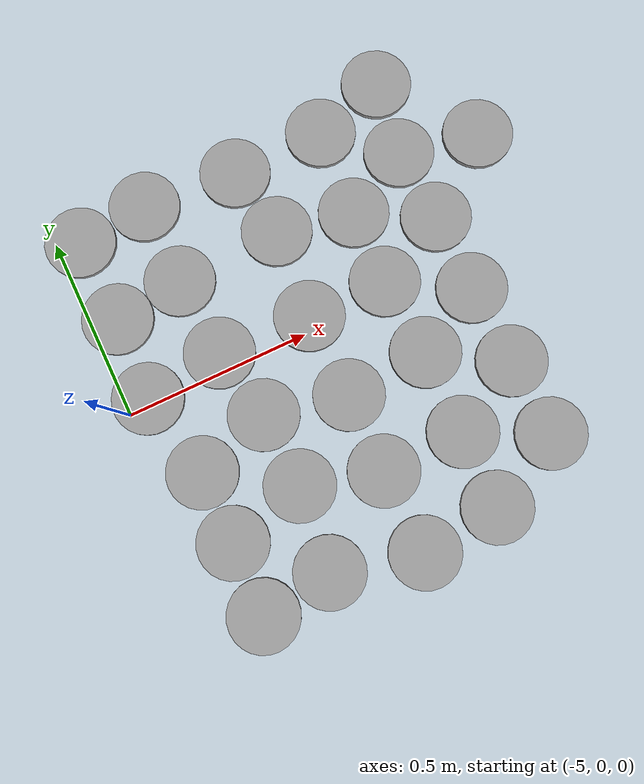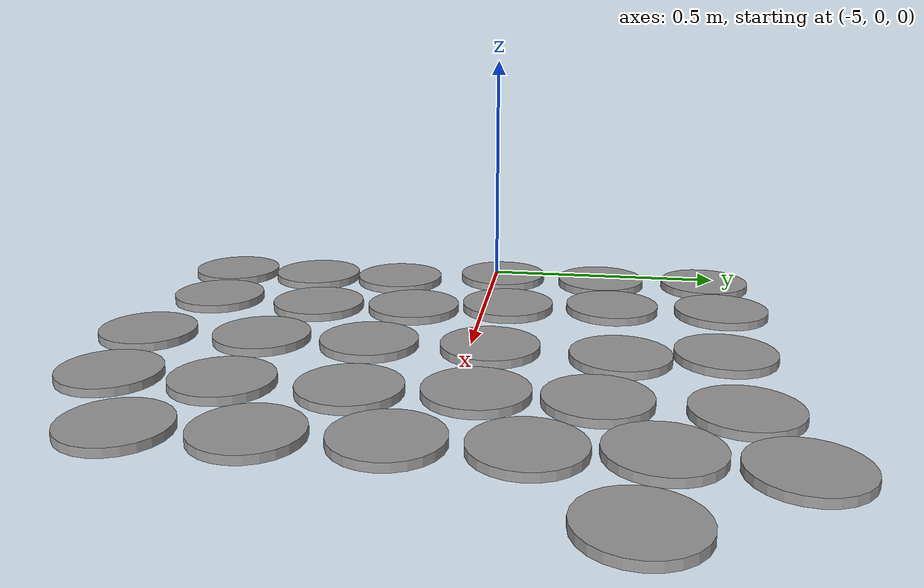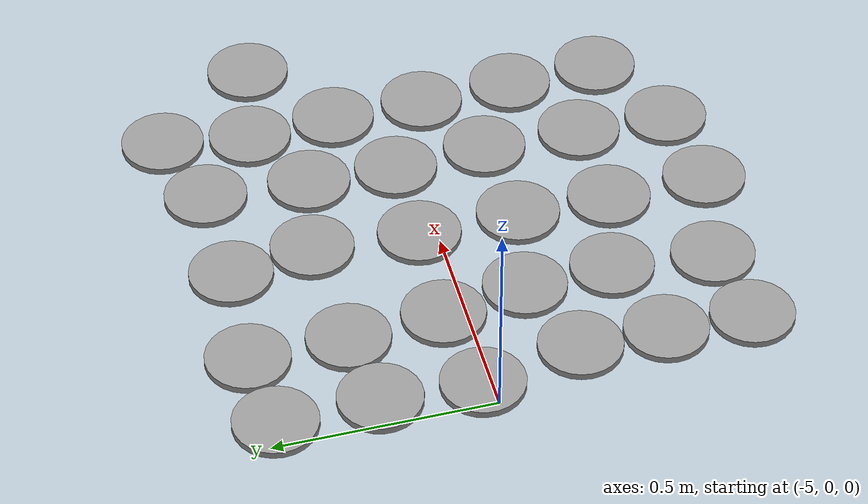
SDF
<sdf version="1.6">
 <world name="default">
  <model name="unit_cylinder_clone">
   <pose>-4.92824 0.244346 0.008114 0 0 -0.669076</pose>
   <link name="link">
    <inertial>
     <mass>1</mass>
     <inertia><ixx>0.145833</ixx><ixy>0</ixy><ixz>0</ixz><iyy>0.145833</iyy><iyz>0</iyz><izz>0.125</izz></inertia>
    </inertial>
    <collision name="collision">
     <geometry><cylinder><radius>0.0950718</radius><length>0.0162339</length></cylinder></geometry>
    </collision>
    <visual name="visual">
     <geometry><cylinder><radius>0.0950718</radius><length>0.0162339</length></cylinder></geometry>
     <material>
      <script><name>Gazebo/Grey</name><uri>file://media/materials/scripts/gazebo.material</uri></script>
     </material>
    </visual>
   </link>
  </model>
  <model name="unit_cylinder_clone_clone">
   <pose>-4.94005 0.019823 0.008108 0 -0 0.098454</pose>
   <link name="link">
    <inertial>
     <mass>1</mass>
     <inertia><ixx>0.145833</ixx><ixy>0</ixy><ixz>0</ixz><iyy>0.145833</iyy><iyz>0</iyz><izz>0.125</izz></inertia>
    </inertial>
    <collision name="collision">
     <geometry><cylinder><radius>0.0950718</radius><length>0.0162339</length></cylinder></geometry>
    </collision>
    <visual name="visual">
     <geometry><cylinder><radius>0.0950718</radius><length>0.0162339</length></cylinder></geometry>
     <material>
      <script><name>Gazebo/Grey</name><uri>file://media/materials/scripts/gazebo.material</uri></script>
     </material>
    </visual>
   </link>
  </model>
  <model name="unit_cylinder_clone_clone_1">
   <pose>-4.88991 -0.213171 0.008116 0 -0 0.00121</pose>
   <link name="link">
    <inertial>
     <mass>1</mass>
     <inertia><ixx>0.145833</ixx><ixy>0</ixy><ixz>0</ixz><iyy>0.145833</iyy><iyz>0</iyz><izz>0.125</izz></inertia>
    </inertial>
    <collision name="collision">
     <geometry><cylinder><radius>0.0950718</radius><length>0.0162339</length></cylinder></geometry>
    </collision>
    <visual name="visual">
     <geometry><cylinder><radius>0.0950718</radius><length>0.0162339</length></cylinder></geometry>
     <material>
      <script><name>Gazebo/Grey</name><uri>file://media/materials/scripts/gazebo.material</uri></script>
     </material>
    </visual>
   </link>
  </model>
  <model name="unit_cylinder_clone_clone_2">
   <pose>-4.89151 -0.407672 0.008113 5e-06 -0 0</pose>
   <link name="link">
    <inertial>
     <mass>1</mass>
     <inertia><ixx>0.145833</ixx><ixy>0</ixy><ixz>0</ixz><iyy>0.145833</iyy><iyz>0</iyz><izz>0.125</izz></inertia>
    </inertial>
    <collision name="collision">
     <geometry><cylinder><radius>0.0950718</radius><length>0.0162339</length></cylinder></geometry>
    </collision>
    <visual name="visual">
     <geometry><cylinder><radius>0.0950718</radius><length>0.0162339</length></cylinder></geometry>
     <material>
      <script><name>Gazebo/Grey</name><uri>file://media/materials/scripts/gazebo.material</uri></script>
     </material>
    </visual>
   </link>
  </model>
  <model name="unit_cylinder_clone_clone_3">
   <pose>-4.89624 -0.604172 0.008113 5e-06 -0 0</pose>
   <link name="link">
    <inertial>
     <mass>1</mass>
     <inertia><ixx>0.145833</ixx><ixy>0</ixy><ixz>0</ixz><iyy>0.145833</iyy><iyz>0</iyz><izz>0.125</izz></inertia>
    </inertial>
    <collision name="collision">
     <geometry><cylinder><radius>0.0950718</radius><length>0.0162339</length></cylinder></geometry>
    </collision>
    <visual name="visual">
     <geometry><cylinder><radius>0.0950718</radius><length>0.0162339</length></cylinder></geometry>
     <material>
      <script><name>Gazebo/Grey</name><uri>file://media/materials/scripts/gazebo.material</uri></script>
     </material>
    </visual>
   </link>
  </model>
  <model name="unit_cylinder_clone_clone_4">
   <pose>-4.74309 0.493456 0.008111 -0 6e-06 -1.60408</pose>
   <link name="link">
    <inertial>
     <mass>1</mass>
     <inertia><ixx>0.145833</ixx><ixy>0</ixy><ixz>0</ixz><iyy>0.145833</iyy><iyz>0</iyz><izz>0.125</izz></inertia>
    </inertial>
    <collision name="collision">
     <geometry><cylinder><radius>0.0950718</radius><length>0.0162339</length></cylinder></geometry>
    </collision>
    <visual name="visual">
     <geometry><cylinder><radius>0.0950718</radius><length>0.0162339</length></cylinder></geometry>
     <material>
      <script><name>Gazebo/Grey</name><uri>file://media/materials/scripts/gazebo.material</uri></script>
     </material>
    </visual>
   </link>
  </model>
  <model name="unit_cylinder_clone_clone_5">
   <pose>-4.93657 0.475133 0.008114 0 0 -0.035931</pose>
   <link name="link">
    <inertial>
     <mass>1</mass>
     <inertia><ixx>0.145833</ixx><ixy>0</ixy><ixz>0</ixz><iyy>0.145833</iyy><iyz>0</iyz><izz>0.125</izz></inertia>
    </inertial>
    <collision name="collision">
     <geometry><cylinder><radius>0.0950718</radius><length>0.0162339</length></cylinder></geometry>
    </collision>
    <visual name="visual">
     <geometry><cylinder><radius>0.0950718</radius><length>0.0162339</length></cylinder></geometry>
     <material>
      <script><name>Gazebo/Grey</name><uri>file://media/materials/scripts/gazebo.material</uri></script>
     </material>
    </visual>
   </link>
  </model>
  <model name="unit_cylinder_clone_clone_7">
   <pose>-4.72333 0.050462 0.008117 0 -0 0.000482</pose>
   <link name="link">
    <inertial>
     <mass>1</mass>
     <inertia><ixx>0.145833</ixx><ixy>0</ixy><ixz>0</ixz><iyy>0.145833</iyy><iyz>0</iyz><izz>0.125</izz></inertia>
    </inertial>
    <collision name="collision">
     <geometry><cylinder><radius>0.0950718</radius><length>0.0162339</length></cylinder></geometry>
    </collision>
    <visual name="visual">
     <geometry><cylinder><radius>0.0950718</radius><length>0.0162339</length></cylinder></geometry>
     <material>
      <script><name>Gazebo/Grey</name><uri>file://media/materials/scripts/gazebo.material</uri></script>
     </material>
    </visual>
   </link>
  </model>
  <model name="unit_cylinder_clone_clone_8">
   <pose>-4.68614 -0.145367 0.008108 0 -0 0.000518</pose>
   <link name="link">
    <inertial>
     <mass>1</mass>
     <inertia><ixx>0.145833</ixx><ixy>0</ixy><ixz>0</ixz><iyy>0.145833</iyy><iyz>0</iyz><izz>0.125</izz></inertia>
    </inertial>
    <collision name="collision">
     <geometry><cylinder><radius>0.0950718</radius><length>0.0162339</length></cylinder></geometry>
    </collision>
    <visual name="visual">
     <geometry><cylinder><radius>0.0950718</radius><length>0.0162339</length></cylinder></geometry>
     <material>
      <script><name>Gazebo/Grey</name><uri>file://media/materials/scripts/gazebo.material</uri></script>
     </material>
    </visual>
   </link>
  </model>
  <model name="unit_cylinder_clone_clone_9">
   <pose>-4.67778 -0.349152 0.008111 0 -0 0</pose>
   <link name="link">
    <inertial>
     <mass>1</mass>
     <inertia><ixx>0.145833</ixx><ixy>0</ixy><ixz>0</ixz><iyy>0.145833</iyy><iyz>0</iyz><izz>0.125</izz></inertia>
    </inertial>
    <collision name="collision">
     <geometry><cylinder><radius>0.0950718</radius><length>0.0162339</length></cylinder></geometry>
    </collision>
    <visual name="visual">
     <geometry><cylinder><radius>0.0950718</radius><length>0.0162339</length></cylinder></geometry>
     <material>
      <script><name>Gazebo/Grey</name><uri>file://media/materials/scripts/gazebo.material</uri></script>
     </material>
    </visual>
   </link>
  </model>
  <model name="unit_cylinder_clone_clone_10">
   <pose>-4.70032 -0.577507 0.008108 0 -0 0</pose>
   <link name="link">
    <inertial>
     <mass>1</mass>
     <inertia><ixx>0.145833</ixx><ixy>0</ixy><ixz>0</ixz><iyy>0.145833</iyy><iyz>0</iyz><izz>0.125</izz></inertia>
    </inertial>
    <collision name="collision">
     <geometry><cylinder><radius>0.0950718</radius><length>0.0162339</length></cylinder></geometry>
    </collision>
    <visual name="visual">
     <geometry><cylinder><radius>0.0950718</radius><length>0.0162339</length></cylinder></geometry>
     <material>
      <script><name>Gazebo/Grey</name><uri>file://media/materials/scripts/gazebo.material</uri></script>
     </material>
    </visual>
   </link>
  </model>
  <model name="unit_cylinder_clone_clone_11">
   <pose>-4.73967 0.268855 0.008112 0 0 -0.462715</pose>
   <link name="link">
    <inertial>
     <mass>1</mass>
     <inertia><ixx>0.145833</ixx><ixy>0</ixy><ixz>0</ixz><iyy>0.145833</iyy><iyz>0</iyz><izz>0.125</izz></inertia>
    </inertial>
    <collision name="collision">
     <geometry><cylinder><radius>0.0950718</radius><length>0.0162339</length></cylinder></geometry>
    </collision>
    <visual name="visual">
     <geometry><cylinder><radius>0.0950718</radius><length>0.0162339</length></cylinder></geometry>
     <material>
      <script><name>Gazebo/Grey</name><uri>file://media/materials/scripts/gazebo.material</uri></script>
     </material>
    </visual>
   </link>
  </model>
  <model name="unit_cylinder_clone_clone_12">
   <pose>-4.48597 0.47576 0.008484 -0.001635 0.003501 -0.231539</pose>
   <link name="link">
    <inertial>
     <mass>1</mass>
     <inertia><ixx>0.145833</ixx><ixy>0</ixy><ixz>0</ixz><iyy>0.145833</iyy><iyz>0</iyz><izz>0.125</izz></inertia>
    </inertial>
    <collision name="collision">
     <geometry><cylinder><radius>0.0950718</radius><length>0.0162339</length></cylinder></geometry>
    </collision>
    <visual name="visual">
     <geometry><cylinder><radius>0.0950718</radius><length>0.0162339</length></cylinder></geometry>
     <material>
      <script><name>Gazebo/Grey</name><uri>file://media/materials/scripts/gazebo.material</uri></script>
     </material>
    </visual>
   </link>
  </model>
  <model name="unit_cylinder_clone_clone_13">
   <pose>-4.45178 0.283309 0.008113 0 0 -0.013302</pose>
   <link name="link">
    <inertial>
     <mass>1</mass>
     <inertia><ixx>0.145833</ixx><ixy>0</ixy><ixz>0</ixz><iyy>0.145833</iyy><iyz>0</iyz><izz>0.125</izz></inertia>
    </inertial>
    <collision name="collision">
     <geometry><cylinder><radius>0.0950718</radius><length>0.0162339</length></cylinder></geometry>
    </collision>
    <visual name="visual">
     <geometry><cylinder><radius>0.0950718</radius><length>0.0162339</length></cylinder></geometry>
     <material>
      <script><name>Gazebo/Grey</name><uri>file://media/materials/scripts/gazebo.material</uri></script>
     </material>
    </visual>
   </link>
  </model>
  <model name="unit_cylinder_clone_clone_14">
   <pose>-4.46934 0.039984 0.008108 0 -0 0</pose>
   <link name="link">
    <inertial>
     <mass>1</mass>
     <inertia><ixx>0.145833</ixx><ixy>0</ixy><ixz>0</ixz><iyy>0.145833</iyy><iyz>0</iyz><izz>0.125</izz></inertia>
    </inertial>
    <collision name="collision">
     <geometry><cylinder><radius>0.0950718</radius><length>0.0162339</length></cylinder></geometry>
    </collision>
    <visual name="visual">
     <geometry><cylinder><radius>0.0950718</radius><length>0.0162339</length></cylinder></geometry>
     <material>
      <script><name>Gazebo/Grey</name><uri>file://media/materials/scripts/gazebo.material</uri></script>
     </material>
    </visual>
   </link>
  </model>
  <model name="unit_cylinder_clone_clone_15">
   <pose>-4.46416 -0.191836 0.008113 0 -0 0</pose>
   <link name="link">
    <inertial>
     <mass>1</mass>
     <inertia><ixx>0.145833</ixx><ixy>0</ixy><ixz>0</ixz><iyy>0.145833</iyy><iyz>0</iyz><izz>0.125</izz></inertia>
    </inertial>
    <collision name="collision">
     <geometry><cylinder><radius>0.0950718</radius><length>0.0162339</length></cylinder></geometry>
    </collision>
    <visual name="visual">
     <geometry><cylinder><radius>0.0950718</radius><length>0.0162339</length></cylinder></geometry>
     <material>
      <script><name>Gazebo/Grey</name><uri>file://media/materials/scripts/gazebo.material</uri></script>
     </material>
    </visual>
   </link>
  </model>
  <model name="unit_cylinder_clone_clone_16">
   <pose>-4.46665 -0.405888 0.008117 0 -0 0</pose>
   <link name="link">
    <inertial>
     <mass>1</mass>
     <inertia><ixx>0.145833</ixx><ixy>0</ixy><ixz>0</ixz><iyy>0.145833</iyy><iyz>0</iyz><izz>0.125</izz></inertia>
    </inertial>
    <collision name="collision">
     <geometry><cylinder><radius>0.0950718</radius><length>0.0162339</length></cylinder></geometry>
    </collision>
    <visual name="visual">
     <geometry><cylinder><radius>0.0950718</radius><length>0.0162339</length></cylinder></geometry>
     <material>
      <script><name>Gazebo/Grey</name><uri>file://media/materials/scripts/gazebo.material</uri></script>
     </material>
    </visual>
   </link>
  </model>
  <model name="unit_cylinder_clone_clone_17">
   <pose>-4.46064 -0.635367 0.008111 0 -0 0</pose>
   <link name="link">
    <inertial>
     <mass>1</mass>
     <inertia><ixx>0.145833</ixx><ixy>0</ixy><ixz>0</ixz><iyy>0.145833</iyy><iyz>0</iyz><izz>0.125</izz></inertia>
    </inertial>
    <collision name="collision">
     <geometry><cylinder><radius>0.0950718</radius><length>0.0162339</length></cylinder></geometry>
    </collision>
    <visual name="visual">
     <geometry><cylinder><radius>0.0950718</radius><length>0.0162339</length></cylinder></geometry>
     <material>
      <script><name>Gazebo/Grey</name><uri>file://media/materials/scripts/gazebo.material</uri></script>
     </material>
    </visual>
   </link>
  </model>
  <model name="unit_cylinder_clone_clone_18">
   <pose>-4.24417 -0.611687 0.008108 0 -0 0</pose>
   <link name="link">
    <inertial>
     <mass>1</mass>
     <inertia><ixx>0.145833</ixx><ixy>0</ixy><ixz>0</ixz><iyy>0.145833</iyy><iyz>0</iyz><izz>0.125</izz></inertia>
    </inertial>
    <collision name="collision">
     <geometry><cylinder><radius>0.0950718</radius><length>0.0162339</length></cylinder></geometry>
    </collision>
    <visual name="visual">
     <geometry><cylinder><radius>0.0950718</radius><length>0.0162339</length></cylinder></geometry>
     <material>
      <script><name>Gazebo/Grey</name><uri>file://media/materials/scripts/gazebo.material</uri></script>
     </material>
    </visual>
   </link>
  </model>
  <model name="unit_cylinder_clone_clone_19">
   <pose>-4.23882 -0.40217 0.008108 0 -0 0</pose>
   <link name="link">
    <inertial>
     <mass>1</mass>
     <inertia><ixx>0.145833</ixx><ixy>0</ixy><ixz>0</ixz><iyy>0.145833</iyy><iyz>0</iyz><izz>0.125</izz></inertia>
    </inertial>
    <collision name="collision">
     <geometry><cylinder><radius>0.0950718</radius><length>0.0162339</length></cylinder></geometry>
    </collision>
    <visual name="visual">
     <geometry><cylinder><radius>0.0950718</radius><length>0.0162339</length></cylinder></geometry>
     <material>
      <script><name>Gazebo/Grey</name><uri>file://media/materials/scripts/gazebo.material</uri></script>
     </material>
    </visual>
   </link>
  </model>
  <model name="unit_cylinder_clone_clone_20">
   <pose>-4.23553 -0.175422 0.008113 5e-06 -0 0</pose>
   <link name="link">
    <inertial>
     <mass>1</mass>
     <inertia><ixx>0.145833</ixx><ixy>0</ixy><ixz>0</ixz><iyy>0.145833</iyy><iyz>0</iyz><izz>0.125</izz></inertia>
    </inertial>
    <collision name="collision">
     <geometry><cylinder><radius>0.0950718</radius><length>0.0162339</length></cylinder></geometry>
    </collision>
    <visual name="visual">
     <geometry><cylinder><radius>0.0950718</radius><length>0.0162339</length></cylinder></geometry>
     <material>
      <script><name>Gazebo/Grey</name><uri>file://media/materials/scripts/gazebo.material</uri></script>
     </material>
    </visual>
   </link>
  </model>
  <model name="unit_cylinder_clone_clone_21">
   <pose>-4.25035 0.039573 0.008108 0 -0 0</pose>
   <link name="link">
    <inertial>
     <mass>1</mass>
     <inertia><ixx>0.145833</ixx><ixy>0</ixy><ixz>0</ixz><iyy>0.145833</iyy><iyz>0</iyz><izz>0.125</izz></inertia>
    </inertial>
    <collision name="collision">
     <geometry><cylinder><radius>0.0950718</radius><length>0.0162339</length></cylinder></geometry>
    </collision>
    <visual name="visual">
     <geometry><cylinder><radius>0.0950718</radius><length>0.0162339</length></cylinder></geometry>
     <material>
      <script><name>Gazebo/Grey</name><uri>file://media/materials/scripts/gazebo.material</uri></script>
     </material>
    </visual>
   </link>
  </model>
  <model name="unit_cylinder_clone_clone_22">
   <pose>-4.24467 0.2429 0.008108 0 -0 0.001298</pose>
   <link name="link">
    <inertial>
     <mass>1</mass>
     <inertia><ixx>0.145833</ixx><ixy>0</ixy><ixz>0</ixz><iyy>0.145833</iyy><iyz>0</iyz><izz>0.125</izz></inertia>
    </inertial>
    <collision name="collision">
     <geometry><cylinder><radius>0.0950718</radius><length>0.0162339</length></cylinder></geometry>
    </collision>
    <visual name="visual">
     <geometry><cylinder><radius>0.0950718</radius><length>0.0162339</length></cylinder></geometry>
     <material>
      <script><name>Gazebo/Grey</name><uri>file://media/materials/scripts/gazebo.material</uri></script>
     </material>
    </visual>
   </link>
  </model>
  <model name="unit_cylinder_clone_clone_23">
   <pose>-4.2309 0.480876 0.008107 0 0 -0.001963</pose>
   <link name="link">
    <inertial>
     <mass>1</mass>
     <inertia><ixx>0.145833</ixx><ixy>0</ixy><ixz>0</ixz><iyy>0.145833</iyy><iyz>0</iyz><izz>0.125</izz></inertia>
    </inertial>
    <collision name="collision">
     <geometry><cylinder><radius>0.0950718</radius><length>0.0162339</length></cylinder></geometry>
    </collision>
    <visual name="visual">
     <geometry><cylinder><radius>0.0950718</radius><length>0.0162339</length></cylinder></geometry>
     <material>
      <script><name>Gazebo/Grey</name><uri>file://media/materials/scripts/gazebo.material</uri></script>
     </material>
    </visual>
   </link>
  </model>
  <model name="unit_cylinder_clone_clone_24">
   <pose>-4.03583 0.541954 0.008108 0 -0 0</pose>
   <link name="link">
    <inertial>
     <mass>1</mass>
     <inertia><ixx>0.145833</ixx><ixy>0</ixy><ixz>0</ixz><iyy>0.145833</iyy><iyz>0</iyz><izz>0.125</izz></inertia>
    </inertial>
    <collision name="collision">
     <geometry><cylinder><radius>0.0950718</radius><length>0.0162339</length></cylinder></geometry>
    </collision>
    <visual name="visual">
     <geometry><cylinder><radius>0.0950718</radius><length>0.0162339</length></cylinder></geometry>
     <material>
      <script><name>Gazebo/Grey</name><uri>file://media/materials/scripts/gazebo.material</uri></script>
     </material>
    </visual>
   </link>
  </model>
  <model name="unit_cylinder_clone_clone_25">
   <pose>-4.06381 0.341531 0.008113 5e-06 -0 0</pose>
   <link name="link">
    <inertial>
     <mass>1</mass>
     <inertia><ixx>0.145833</ixx><ixy>0</ixy><ixz>0</ixz><iyy>0.145833</iyy><iyz>0</iyz><izz>0.125</izz></inertia>
    </inertial>
    <collision name="collision">
     <geometry><cylinder><radius>0.0950718</radius><length>0.0162339</length></cylinder></geometry>
    </collision>
    <visual name="visual">
     <geometry><cylinder><radius>0.0950718</radius><length>0.0162339</length></cylinder></geometry>
     <material>
      <script><name>Gazebo/Grey</name><uri>file://media/materials/scripts/gazebo.material</uri></script>
     </material>
    </visual>
   </link>
  </model>
  <model name="unit_cylinder_clone_clone_26">
   <pose>-4.05114 0.140238 0.008108 0 -0 0</pose>
   <link name="link">
    <inertial>
     <mass>1</mass>
     <inertia><ixx>0.145833</ixx><ixy>0</ixy><ixz>0</ixz><iyy>0.145833</iyy><iyz>0</iyz><izz>0.125</izz></inertia>
    </inertial>
    <collision name="collision">
     <geometry><cylinder><radius>0.0950718</radius><length>0.0162339</length></cylinder></geometry>
    </collision>
    <visual name="visual">
     <geometry><cylinder><radius>0.0950718</radius><length>0.0162339</length></cylinder></geometry>
     <material>
      <script><name>Gazebo/Grey</name><uri>file://media/materials/scripts/gazebo.material</uri></script>
     </material>
    </visual>
   </link>
  </model>
  <model name="unit_cylinder_clone_clone_27">
   <pose>-4.05025 -0.072851 0.008108 0 -0 0</pose>
   <link name="link">
    <inertial>
     <mass>1</mass>
     <inertia><ixx>0.145833</ixx><ixy>0</ixy><ixz>0</ixz><iyy>0.145833</iyy><iyz>0</iyz><izz>0.125</izz></inertia>
    </inertial>
    <collision name="collision">
     <geometry><cylinder><radius>0.0950718</radius><length>0.0162339</length></cylinder></geometry>
    </collision>
    <visual name="visual">
     <geometry><cylinder><radius>0.0950718</radius><length>0.0162339</length></cylinder></geometry>
     <material>
      <script><name>Gazebo/Grey</name><uri>file://media/materials/scripts/gazebo.material</uri></script>
     </material>
    </visual>
   </link>
  </model>
  <model name="unit_cylinder_clone_clone_28">
   <pose>-4.04202 -0.290432 0.008113 5e-06 -0 0</pose>
   <link name="link">
    <inertial>
     <mass>1</mass>
     <inertia><ixx>0.145833</ixx><ixy>0</ixy><ixz>0</ixz><iyy>0.145833</iyy><iyz>0</iyz><izz>0.125</izz></inertia>
    </inertial>
    <collision name="collision">
     <geometry><cylinder><radius>0.0950718</radius><length>0.0162339</length></cylinder></geometry>
    </collision>
    <visual name="visual">
     <geometry><cylinder><radius>0.0950718</radius><length>0.0162339</length></cylinder></geometry>
     <material>
      <script><name>Gazebo/Grey</name><uri>file://media/materials/scripts/gazebo.material</uri></script>
     </material>
    </visual>
   </link>
  </model>
  <model name="unit_cylinder_clone_clone_29">
   <pose>-4.03468 -0.501989 0.008108 0 -0 0</pose>
   <link name="link">
    <inertial>
     <mass>1</mass>
     <inertia><ixx>0.145833</ixx><ixy>0</ixy><ixz>0</ixz><iyy>0.145833</iyy><iyz>0</iyz><izz>0.125</izz></inertia>
    </inertial>
    <collision name="collision">
     <geometry><cylinder><radius>0.0950718</radius><length>0.0162339</length></cylinder></geometry>
    </collision>
    <visual name="visual">
     <geometry><cylinder><radius>0.0950718</radius><length>0.0162339</length></cylinder></geometry>
     <material>
      <script><name>Gazebo/Grey</name><uri>file://media/materials/scripts/gazebo.material</uri></script>
     </material>
    </visual>
   </link>
  </model>
  <model name="unit_cylinder_clone_clone_34">
   <pose>-3.84755 0.300225 0.008108 0 -0 0</pose>
   <link name="link">
    <inertial>
     <mass>1</mass>
     <inertia><ixx>0.145833</ixx><ixy>0</ixy><ixz>0</ixz><iyy>0.145833</iyy><iyz>0</iyz><izz>0.125</izz></inertia>
    </inertial>
    <collision name="collision">
     <geometry><cylinder><radius>0.0950718</radius><length>0.0162339</length></cylinder></geometry>
    </collision>
    <visual name="visual">
     <geometry><cylinder><radius>0.0950718</radius><length>0.0162339</length></cylinder></geometry>
     <material>
      <script><name>Gazebo/Grey</name><uri>file://media/materials/scripts/gazebo.material</uri></script>
     </material>
    </visual>
   </link>
  </model>
 </world>
</sdf>
